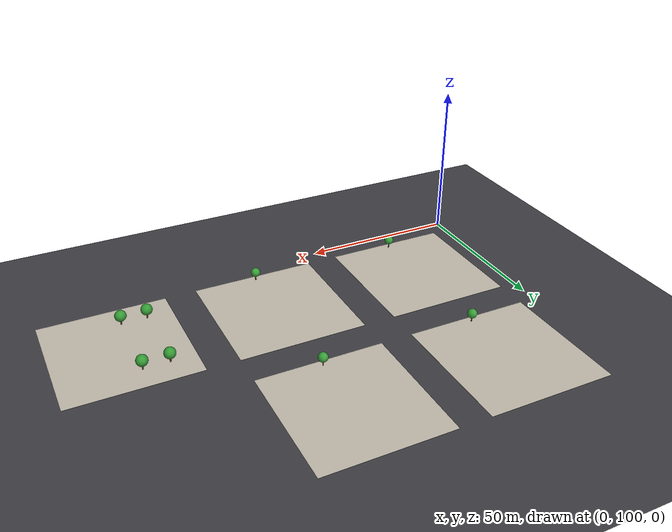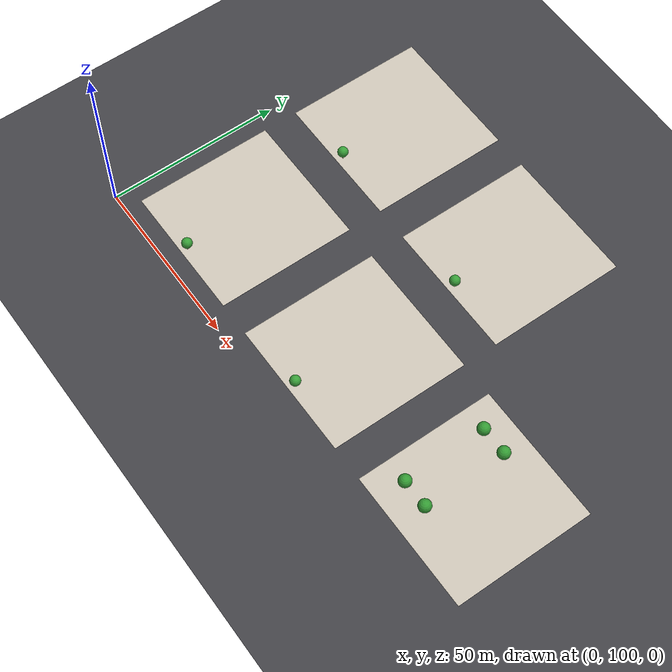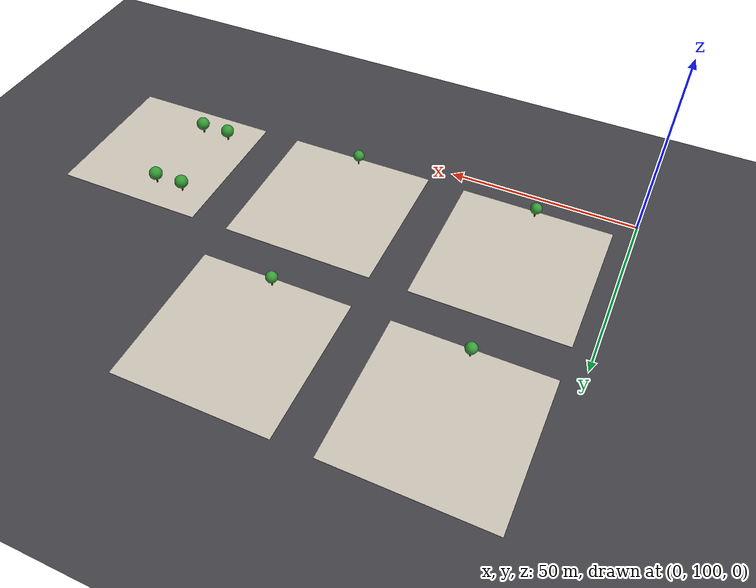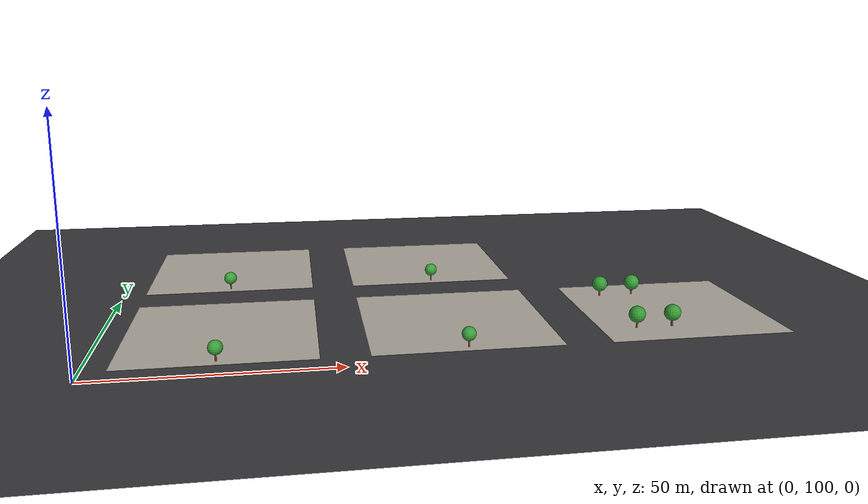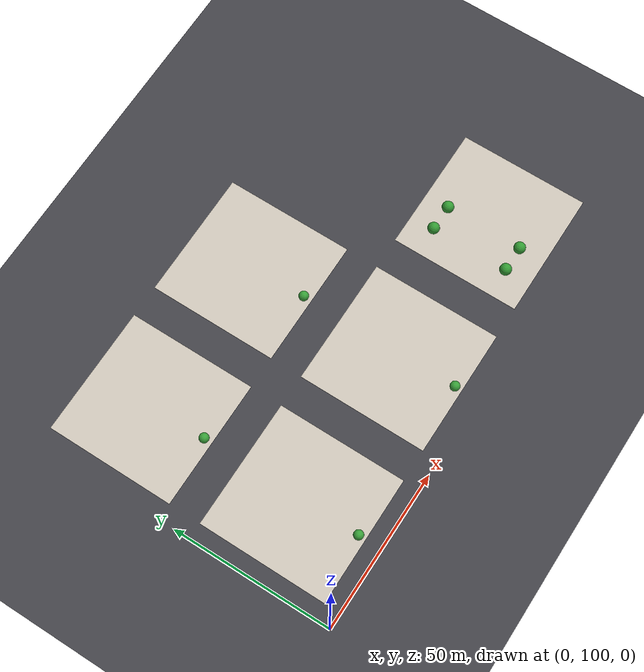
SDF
<sdf version="1.6">
 <world name="civiclens_indian_city">
  <model name="ground_plane">
   <static>true</static>
   <link name="link">
    <collision name="collision">
     <geometry><plane><normal>0 0 1</normal><size>350 350</size></plane></geometry>
    </collision>
    <visual name="asphalt">
     <geometry><plane><normal>0 0 1</normal><size>350 350</size></plane></geometry>
     <material>
      <ambient>0.22 0.22 0.24 1</ambient>
      <diffuse>0.25 0.25 0.27 1</diffuse>
      <specular>0.08 0.08 0.08 1</specular>
     </material>
    </visual>
   </link>
  </model>
  <model name="sidewalk_block_2_0">
   <static>true</static>
   <pose>25 125 0.04 0 0 0</pose>
   <link name="link">
    <collision name="col"><geometry><box><size>40 40 0.08</size></box></geometry></collision>
    <visual name="pavement">
     <geometry><box><size>40 40 0.08</size></box></geometry>
     <material>
      <ambient>0.72 0.70 0.65 1</ambient>
      <diffuse>0.78 0.75 0.70 1</diffuse>
      <specular>0.1 0.1 0.1 1</specular>
     </material>
    </visual>
   </link>
  </model>
  <model name="street_tree_9">
   <static>true</static>
   <pose>25 107 0.08 0 0 0</pose>
   <link name="link">
    <visual name="trunk">
     <pose>0 0 1.2 0 0 0</pose>
     <geometry><cylinder><radius>0.18</radius><length>2.4</length></cylinder></geometry>
     <material><ambient>0.35 0.20 0.08 1</ambient></material>
    </visual>
    <visual name="canopy">
     <pose>0 0 2.8 0 0 0</pose>
     <geometry><sphere><radius>1.5</radius></sphere></geometry>
     <material><ambient>0.18 0.55 0.18 1</ambient><diffuse>0.22 0.62 0.22 1</diffuse></material>
    </visual>
   </link>
  </model>
  <model name="sidewalk_block_2_1">
   <static>true</static>
   <pose>75 125 0.04 0 0 0</pose>
   <link name="link">
    <collision name="col"><geometry><box><size>40 40 0.08</size></box></geometry></collision>
    <visual name="pavement">
     <geometry><box><size>40 40 0.08</size></box></geometry>
     <material>
      <ambient>0.72 0.70 0.65 1</ambient>
      <diffuse>0.78 0.75 0.70 1</diffuse>
      <specular>0.1 0.1 0.1 1</specular>
     </material>
    </visual>
   </link>
  </model>
  <model name="street_tree_10">
   <static>true</static>
   <pose>75 107 0.08 0 0 0</pose>
   <link name="link">
    <visual name="trunk">
     <pose>0 0 1.2 0 0 0</pose>
     <geometry><cylinder><radius>0.18</radius><length>2.4</length></cylinder></geometry>
     <material><ambient>0.35 0.20 0.08 1</ambient></material>
    </visual>
    <visual name="canopy">
     <pose>0 0 2.8 0 0 0</pose>
     <geometry><sphere><radius>1.5</radius></sphere></geometry>
     <material><ambient>0.18 0.55 0.18 1</ambient><diffuse>0.22 0.62 0.22 1</diffuse></material>
    </visual>
   </link>
  </model>
  <model name="sidewalk_block_2_2">
   <static>true</static>
   <pose>125 125 0.04 0 0 0</pose>
   <link name="link">
    <collision name="col"><geometry><box><size>40 40 0.08</size></box></geometry></collision>
    <visual name="pavement">
     <geometry><box><size>40 40 0.08</size></box></geometry>
     <material>
      <ambient>0.72 0.70 0.65 1</ambient>
      <diffuse>0.78 0.75 0.70 1</diffuse>
      <specular>0.1 0.1 0.1 1</specular>
     </material>
    </visual>
   </link>
  </model>
  <model name="park_tree_11">
   <static>true</static>
   <pose>113 113 0.08 0 0 0</pose>
   <link name="link">
    <visual name="trunk">
     <pose>0 0 1.2 0 0 0</pose>
     <geometry><cylinder><radius>0.22</radius><length>2.4</length></cylinder></geometry>
     <material><ambient>0.35 0.20 0.08 1</ambient></material>
    </visual>
    <visual name="canopy">
     <pose>0 0 3.0 0 0 0</pose>
     <geometry><sphere><radius>1.8</radius></sphere></geometry>
     <material><ambient>0.15 0.52 0.15 1</ambient><diffuse>0.20 0.60 0.20 1</diffuse></material>
    </visual>
   </link>
  </model>
  <model name="park_tree_12">
   <static>true</static>
   <pose>113 137 0.08 0 0 0</pose>
   <link name="link">
    <visual name="trunk">
     <pose>0 0 1.2 0 0 0</pose>
     <geometry><cylinder><radius>0.22</radius><length>2.4</length></cylinder></geometry>
     <material><ambient>0.35 0.20 0.08 1</ambient></material>
    </visual>
    <visual name="canopy">
     <pose>0 0 3.0 0 0 0</pose>
     <geometry><sphere><radius>1.8</radius></sphere></geometry>
     <material><ambient>0.15 0.52 0.15 1</ambient><diffuse>0.20 0.60 0.20 1</diffuse></material>
    </visual>
   </link>
  </model>
  <model name="park_tree_13">
   <static>true</static>
   <pose>121 113 0.08 0 0 0</pose>
   <link name="link">
    <visual name="trunk">
     <pose>0 0 1.2 0 0 0</pose>
     <geometry><cylinder><radius>0.22</radius><length>2.4</length></cylinder></geometry>
     <material><ambient>0.35 0.20 0.08 1</ambient></material>
    </visual>
    <visual name="canopy">
     <pose>0 0 3.0 0 0 0</pose>
     <geometry><sphere><radius>1.8</radius></sphere></geometry>
     <material><ambient>0.15 0.52 0.15 1</ambient><diffuse>0.20 0.60 0.20 1</diffuse></material>
    </visual>
   </link>
  </model>
  <model name="park_tree_14">
   <static>true</static>
   <pose>121 137 0.08 0 0 0</pose>
   <link name="link">
    <visual name="trunk">
     <pose>0 0 1.2 0 0 0</pose>
     <geometry><cylinder><radius>0.22</radius><length>2.4</length></cylinder></geometry>
     <material><ambient>0.35 0.20 0.08 1</ambient></material>
    </visual>
    <visual name="canopy">
     <pose>0 0 3.0 0 0 0</pose>
     <geometry><sphere><radius>1.8</radius></sphere></geometry>
     <material><ambient>0.15 0.52 0.15 1</ambient><diffuse>0.20 0.60 0.20 1</diffuse></material>
    </visual>
   </link>
  </model>
  <model name="sidewalk_block_3_0">
   <static>true</static>
   <pose>25 175 0.04 0 0 0</pose>
   <link name="link">
    <collision name="col"><geometry><box><size>40 40 0.08</size></box></geometry></collision>
    <visual name="pavement">
     <geometry><box><size>40 40 0.08</size></box></geometry>
     <material>
      <ambient>0.72 0.70 0.65 1</ambient>
      <diffuse>0.78 0.75 0.70 1</diffuse>
      <specular>0.1 0.1 0.1 1</specular>
     </material>
    </visual>
   </link>
  </model>
  <model name="street_tree_20">
   <static>true</static>
   <pose>25 157 0.08 0 0 0</pose>
   <link name="link">
    <visual name="trunk">
     <pose>0 0 1.2 0 0 0</pose>
     <geometry><cylinder><radius>0.18</radius><length>2.4</length></cylinder></geometry>
     <material><ambient>0.35 0.20 0.08 1</ambient></material>
    </visual>
    <visual name="canopy">
     <pose>0 0 2.8 0 0 0</pose>
     <geometry><sphere><radius>1.5</radius></sphere></geometry>
     <material><ambient>0.18 0.55 0.18 1</ambient><diffuse>0.22 0.62 0.22 1</diffuse></material>
    </visual>
   </link>
  </model>
  <model name="sidewalk_block_3_1">
   <static>true</static>
   <pose>75 175 0.04 0 0 0</pose>
   <link name="link">
    <collision name="col"><geometry><box><size>40 40 0.08</size></box></geometry></collision>
    <visual name="pavement">
     <geometry><box><size>40 40 0.08</size></box></geometry>
     <material>
      <ambient>0.72 0.70 0.65 1</ambient>
      <diffuse>0.78 0.75 0.70 1</diffuse>
      <specular>0.1 0.1 0.1 1</specular>
     </material>
    </visual>
   </link>
  </model>
  <model name="street_tree_21">
   <static>true</static>
   <pose>75 157 0.08 0 0 0</pose>
   <link name="link">
    <visual name="trunk">
     <pose>0 0 1.2 0 0 0</pose>
     <geometry><cylinder><radius>0.18</radius><length>2.4</length></cylinder></geometry>
     <material><ambient>0.35 0.20 0.08 1</ambient></material>
    </visual>
    <visual name="canopy">
     <pose>0 0 2.8 0 0 0</pose>
     <geometry><sphere><radius>1.5</radius></sphere></geometry>
     <material><ambient>0.18 0.55 0.18 1</ambient><diffuse>0.22 0.62 0.22 1</diffuse></material>
    </visual>
   </link>
  </model>
 </world>
</sdf>
